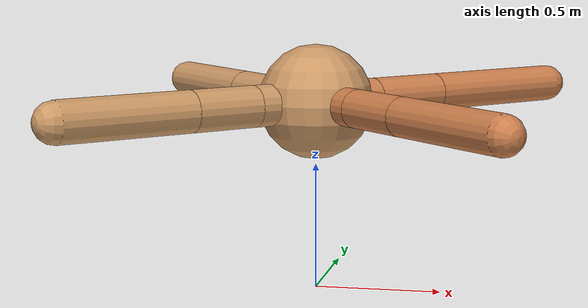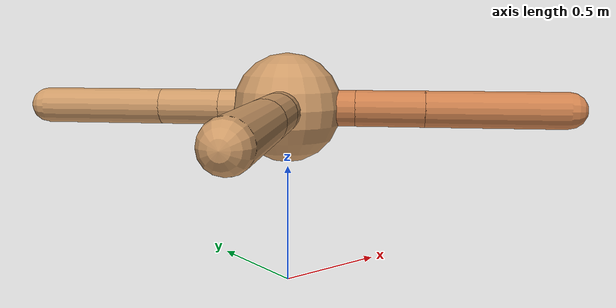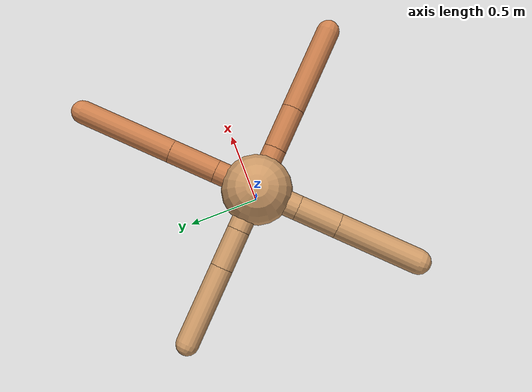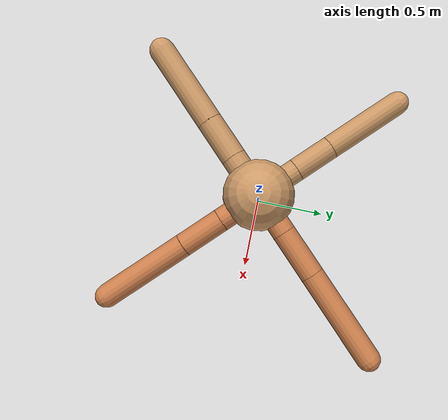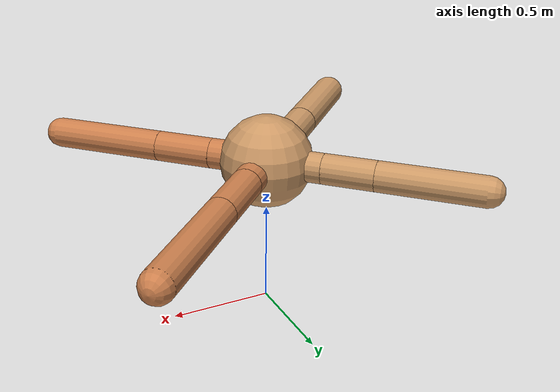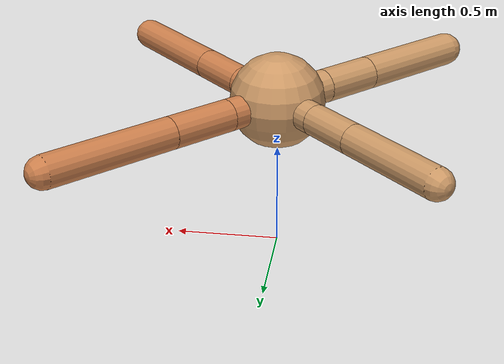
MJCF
<?xml version="1.0" ?>
<mujoco model="ant">

	<compiler angle="degree" coordinate="local" inertiafromgeom="true"/>

	<option integrator="RK4" timestep="0.01"/>

	<custom>

		<numeric data="0.0 0.0 0.55 1.0 0.0 0.0 0.0 0.0 1.0 0.0 -1.0 0.0 -1.0 0.0 1.0" name="init_qpos"/>

	</custom>

	<default>

		<joint armature="1" damping="1" limited="true"/>

		<geom conaffinity="0" condim="3" density="5.0" friction="1.5 0.1 0.1" margin="0.01" rgba="0.8 0.6 0.4 1"/>

	</default>

	<worldbody>

		<body name="torso" pos="0 0 0.75">

			<geom name="torso_geom" pos="0 0 0" size="0.22674882742558117" type="sphere"/>

			<!--joint armature="0" damping="0" limited="false" margin="0.01" name="root" pos="0 0 0" type="free"/-->

			<body name="front_left_leg" pos="0 0 0">

				<geom fromto="0 0 0 0.2 0.2 0" name="aux_1_geom" size="0.0754905571624282" type="capsule" rgba=".8 .5 .3 1"/>

				<body name="aux_1" pos="0.2 0.2 0">

					<joint axis="0 0 1" name="hip_1" pos="0.0 0.0 0.0" range="-40 40" type="hinge"/>

					<geom fromto="0 0 0 0.21982638106343702 0.21982638106343702 0" name="left_leg_geom" size="0.0754905571624282" type="capsule" rgba=".8 .5 .3 1"/>

					<body pos="0.21982638106343702 0.21982638106343702 0" name="front_left_foot">

						<joint axis="-1 1 0" name="ankle_1" pos="0.0 0.0 0.0" range="30 100" type="hinge"/>

						<geom fromto="0 0 0 0.43965276212687404 0.43965276212687404 0" name="left_ankle_geom" size="0.0754905571624282" type="capsule" rgba=".8 .5 .3 1"/>

					</body>

				</body>

			</body>

			<body name="front_right_leg" pos="0 0 0">

				<geom fromto="0 0 0 -0.2 0.2 0" name="aux_2_geom" size="0.07410866996935082" type="capsule"/>

				<body name="aux_2" pos="-0.2 0.2 0">

					<joint axis="0 0 1" name="hip_2" pos="0.0 0.0 0.0" range="-40 40" type="hinge"/>

					<geom fromto="0 0 0 -0.18056534224854048 0.18056534224854048 0" name="right_leg_geom" size="0.07410866996935082" type="capsule"/>

					<body pos="-0.18056534224854048 0.18056534224854048 0" name="front_right_foot">

						<joint axis="1 1 0" name="ankle_2" pos="0.0 0.0 0.0" range="-100 -30" type="hinge"/>

						<geom fromto="0 0 0 -0.36113068449708097 0.36113068449708097 0" name="right_ankle_geom" size="0.07410866996935082" type="capsule"/>

					</body>

				</body>

			</body>

			<body name="left_back_leg" pos="0 0 0">

				<geom fromto="0 0 0 -0.2 -0.2 0" name="aux_3_geom" size="0.0814010666760103" type="capsule"/>

				<body name="aux_3" pos="-0.2 -0.2 0">

					<joint axis="0 0 1" name="hip_3" pos="0.0 0.0 0.0" range="-40 40" type="hinge"/>

					<geom fromto="0 0 0 -0.19348366825962726 -0.19348366825962726 0" name="back_leg_geom" size="0.0814010666760103" type="capsule"/>

					<body pos="-0.19348366825962726 -0.19348366825962726 0" name="left_back_foot">

						<joint axis="-1 1 0" name="ankle_3" pos="0.0 0.0 0.0" range="-100 -30" type="hinge"/>

						<geom fromto="0 0 0 -0.3869673365192545 -0.3869673365192545 0" name="third_ankle_geom" size="0.0814010666760103" type="capsule"/>

					</body>

				</body>

			</body>

			<body name="right_back_leg" pos="0 0 0">

				<geom fromto="0 0 0 0.2 -0.2 0" name="aux_4_geom" size="0.0744785203147888" type="capsule" rgba=".8 .5 .3 1"/>

				<body name="aux_4" pos="0.2 -0.2 0">

					<joint axis="0 0 1" name="hip_4" pos="0.0 0.0 0.0" range="-40 40" type="hinge"/>

					<geom fromto="0 0 0 0.19870268065471328 -0.19870268065471328 0" name="rightback_leg_geom" size="0.0744785203147888" type="capsule" rgba=".8 .5 .3 1"/>

					<body pos="0.19870268065471328 -0.19870268065471328 0" name="right_back_foot">

						<joint axis="1 1 0" name="ankle_4" pos="0.0 0.0 0.0" range="30 100" type="hinge"/>

						<geom fromto="0 0 0 0.39740536130942655 -0.39740536130942655 0" name="fourth_ankle_geom" size="0.0744785203147888" type="capsule" rgba=".8 .5 .3 1"/>

					</body>

				</body>

			</body>

		</body>

	</worldbody>

	<actuator>

		<motor ctrllimited="true" ctrlrange="-1.0 1.0" joint="hip_4" gear="150"/>

		<motor ctrllimited="true" ctrlrange="-1.0 1.0" joint="ankle_4" gear="150"/>

		<motor ctrllimited="true" ctrlrange="-1.0 1.0" joint="hip_1" gear="150"/>

		<motor ctrllimited="true" ctrlrange="-1.0 1.0" joint="ankle_1" gear="150"/>

		<motor ctrllimited="true" ctrlrange="-1.0 1.0" joint="hip_2" gear="150"/>

		<motor ctrllimited="true" ctrlrange="-1.0 1.0" joint="ankle_2" gear="150"/>

		<motor ctrllimited="true" ctrlrange="-1.0 1.0" joint="hip_3" gear="150"/>

		<motor ctrllimited="true" ctrlrange="-1.0 1.0" joint="ankle_3" gear="150"/>

	</actuator>

</mujoco>
